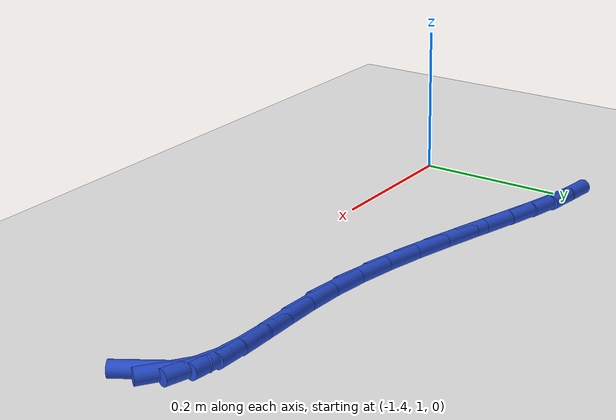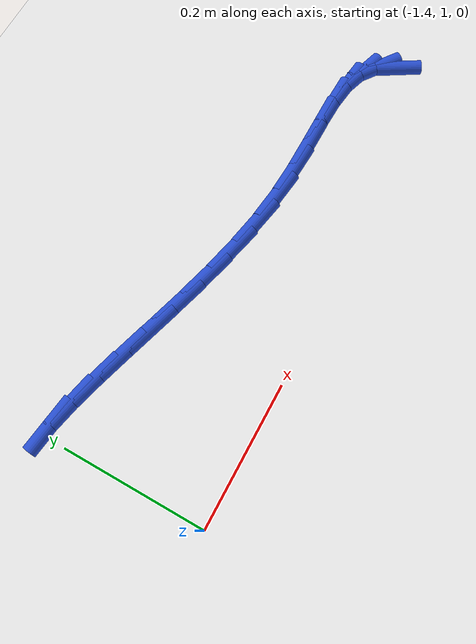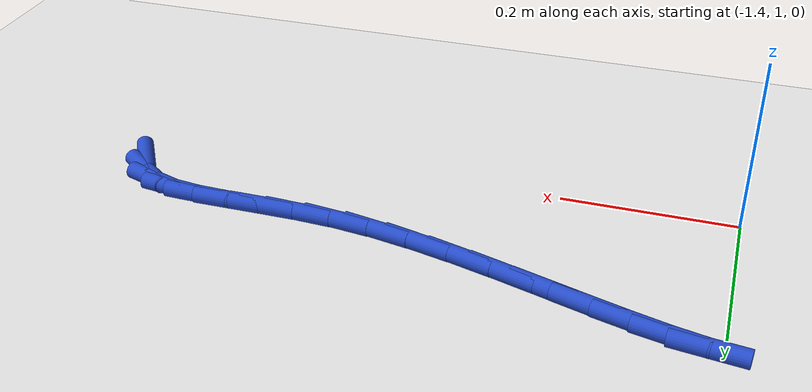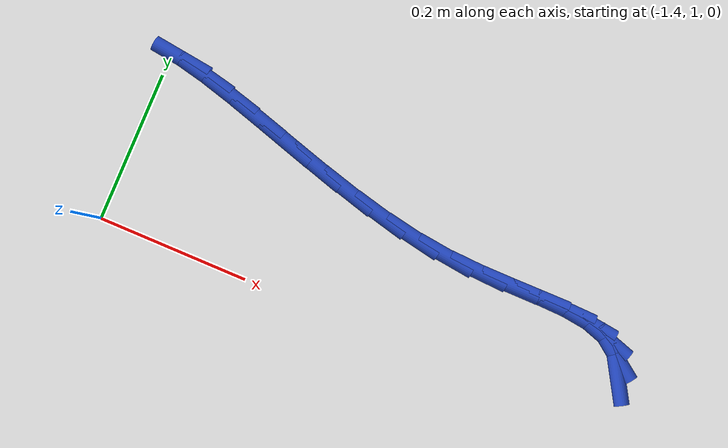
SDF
<sdf version="1.6">
 <world name="default">
  <model name="ground_plane">
   <static>1</static>
   <link name="link">
    <collision name="collision">
     <geometry><plane><normal>0 0 1</normal><size>100 100</size></plane></geometry>
     <surface><friction><ode><mu>100</mu><mu2>50</mu2></ode></friction></surface>
    </collision>
    <visual name="visual">
     <cast_shadows>0</cast_shadows>
     <geometry><plane><normal>0 0 1</normal><size>100 100</size></plane></geometry>
     <material>
      <script><uri>file://media/materials/scripts/gazebo.material</uri><name>Gazebo/WhiteGlow</name></script>
     </material>
    </visual>
   </link>
  </model>
  <model name="line">
   <link name="link_40">
    <pose>-0.7160329227617046 1.0746527065797729 0.01 0 1.57 -1.0314268278902456</pose>
    <collision name="collision">
     <geometry><cylinder><radius>0.01</radius><length>0.08</length></cylinder></geometry>
    </collision>
    <visual name="visual">
     <material>
      <script><name>Gazebo/Blue</name><uri>file://media/materials/scripts/gazebo.material</uri></script>
     </material>
     <geometry><cylinder><radius>0.01</radius><length>0.08</length></cylinder></geometry>
    </visual>
   </link>
   <link name="link_41">
    <pose>-0.7294820120841008 1.097121297116823 0.01 0 1.57 -0.6356567790762537</pose>
    <collision name="collision">
     <geometry><cylinder><radius>0.01</radius><length>0.08</length></cylinder></geometry>
    </collision>
    <visual name="visual">
     <material>
      <script><name>Gazebo/Blue</name><uri>file://media/materials/scripts/gazebo.material</uri></script>
     </material>
     <geometry><cylinder><radius>0.01</radius><length>0.08</length></cylinder></geometry>
    </visual>
   </link>
   <link name="link_42">
    <pose>-0.7496906750294795 1.112031545183198 0.01 0 1.57 -0.3145713084228156</pose>
    <collision name="collision">
     <geometry><cylinder><radius>0.01</radius><length>0.08</length></cylinder></geometry>
    </collision>
    <visual name="visual">
     <material>
      <script><name>Gazebo/Blue</name><uri>file://media/materials/scripts/gazebo.material</uri></script>
     </material>
     <geometry><cylinder><radius>0.01</radius><length>0.08</length></cylinder></geometry>
    </visual>
   </link>
   <link name="link_43">
    <pose>-0.7761793228513663 1.1206502969376975 0.01 0 1.57 -0.12443586693087837</pose>
    <collision name="collision">
     <geometry><cylinder><radius>0.01</radius><length>0.08</length></cylinder></geometry>
    </collision>
    <visual name="visual">
     <material>
      <script><name>Gazebo/Blue</name><uri>file://media/materials/scripts/gazebo.material</uri></script>
     </material>
     <geometry><cylinder><radius>0.01</radius><length>0.08</length></cylinder></geometry>
    </visual>
   </link>
   <link name="link_44">
    <pose>-0.8081791116526986 1.1246528988995768 0.01 0 1.57 -0.028890663913331574</pose>
    <collision name="collision">
     <geometry><cylinder><radius>0.01</radius><length>0.08</length></cylinder></geometry>
    </collision>
    <visual name="visual">
     <material>
      <script><name>Gazebo/Blue</name><uri>file://media/materials/scripts/gazebo.material</uri></script>
     </material>
     <geometry><cylinder><radius>0.01</radius><length>0.08</length></cylinder></geometry>
    </visual>
   </link>
   <link name="link_45">
    <pose>-0.844921197536414 1.1257146975880914 0.01 0 1.57 0.005001932229973916</pose>
    <collision name="collision">
     <geometry><cylinder><radius>0.01</radius><length>0.08</length></cylinder></geometry>
    </collision>
    <visual name="visual">
     <material>
      <script><name>Gazebo/Blue</name><uri>file://media/materials/scripts/gazebo.material</uri></script>
     </material>
     <geometry><cylinder><radius>0.01</radius><length>0.08</length></cylinder></geometry>
    </visual>
   </link>
   <link name="link_46">
    <pose>-0.8856367366054508 1.1255110395224959 0.01 0 1.57 -0.004695571202951977</pose>
    <collision name="collision">
     <geometry><cylinder><radius>0.01</radius><length>0.08</length></cylinder></geometry>
    </collision>
    <visual name="visual">
     <material>
      <script><name>Gazebo/Blue</name><uri>file://media/materials/scripts/gazebo.material</uri></script>
     </material>
     <geometry><cylinder><radius>0.01</radius><length>0.08</length></cylinder></geometry>
    </visual>
   </link>
   <link name="link_47">
    <pose>-0.9295568849627464 1.1257172712220462 0.01 0 1.57 -0.049391849032370545</pose>
    <collision name="collision">
     <geometry><cylinder><radius>0.01</radius><length>0.08</length></cylinder></geometry>
    </collision>
    <visual name="visual">
     <material>
      <script><name>Gazebo/Blue</name><uri>file://media/materials/scripts/gazebo.material</uri></script>
     </material>
     <geometry><cylinder><radius>0.01</radius><length>0.08</length></cylinder></geometry>
    </visual>
   </link>
   <link name="link_48">
    <pose>-0.9759127987112381 1.1280087392059976 0.01 0 1.57 -0.12126209495058496</pose>
    <collision name="collision">
     <geometry><cylinder><radius>0.01</radius><length>0.08</length></cylinder></geometry>
    </collision>
    <visual name="visual">
     <material>
      <script><name>Gazebo/Blue</name><uri>file://media/materials/scripts/gazebo.material</uri></script>
     </material>
     <geometry><cylinder><radius>0.01</radius><length>0.08</length></cylinder></geometry>
    </visual>
   </link>
   <link name="link_49">
    <pose>-1.023941636699651 1.1338615323373513 0.01 0 1.57 -0.18732919693956782</pose>
    <collision name="collision">
     <geometry><cylinder><radius>0.01</radius><length>0.08</length></cylinder></geometry>
    </collision>
    <visual name="visual">
     <material>
      <script><name>Gazebo/Blue</name><uri>file://media/materials/scripts/gazebo.material</uri></script>
     </material>
     <geometry><cylinder><radius>0.01</radius><length>0.08</length></cylinder></geometry>
    </visual>
   </link>
   <link name="link_50">
    <pose>-1.0729288969393787 1.143147149079656 0.01 0 1.57 -0.2354410953516581</pose>
    <collision name="collision">
     <geometry><cylinder><radius>0.01</radius><length>0.08</length></cylinder></geometry>
    </collision>
    <visual name="visual">
     <material>
      <script><name>Gazebo/Blue</name><uri>file://media/materials/scripts/gazebo.material</uri></script>
     </material>
     <geometry><cylinder><radius>0.01</radius><length>0.08</length></cylinder></geometry>
    </visual>
   </link>
   <link name="link_51">
    <pose>-1.1221834027139739 1.1549628190489651 0.01 0 1.57 -0.26854711815059085</pose>
    <collision name="collision">
     <geometry><cylinder><radius>0.01</radius><length>0.08</length></cylinder></geometry>
    </collision>
    <visual name="visual">
     <material>
      <script><name>Gazebo/Blue</name><uri>file://media/materials/scripts/gazebo.material</uri></script>
     </material>
     <geometry><cylinder><radius>0.01</radius><length>0.08</length></cylinder></geometry>
    </visual>
   </link>
   <link name="link_52">
    <pose>-1.171014127964998 1.1684007708563413 0.01 0 1.57 -0.28833309087477643</pose>
    <collision name="collision">
     <geometry><cylinder><radius>0.01</radius><length>0.08</length></cylinder></geometry>
    </collision>
    <visual name="visual">
     <material>
      <script><name>Gazebo/Blue</name><uri>file://media/materials/scripts/gazebo.material</uri></script>
     </material>
     <geometry><cylinder><radius>0.01</radius><length>0.08</length></cylinder></geometry>
    </visual>
   </link>
   <link name="link_53">
    <pose>-1.2187300466340123 1.1825532331128457 0.01 0 1.57 -0.29517301512145183</pose>
    <collision name="collision">
     <geometry><cylinder><radius>0.01</radius><length>0.08</length></cylinder></geometry>
    </collision>
    <visual name="visual">
     <material>
      <script><name>Gazebo/Blue</name><uri>file://media/materials/scripts/gazebo.material</uri></script>
     </material>
     <geometry><cylinder><radius>0.01</radius><length>0.08</length></cylinder></geometry>
    </visual>
   </link>
   <link name="link_54">
    <pose>-1.2646401326625778 1.1965124344295408 0.01 0 1.57 -0.2879493658140747</pose>
    <collision name="collision">
     <geometry><cylinder><radius>0.01</radius><length>0.08</length></cylinder></geometry>
    </collision>
    <visual name="visual">
     <material>
      <script><name>Gazebo/Blue</name><uri>file://media/materials/scripts/gazebo.material</uri></script>
     </material>
     <geometry><cylinder><radius>0.01</radius><length>0.08</length></cylinder></geometry>
    </visual>
   </link>
   <link name="link_55">
    <pose>-1.3080533599922552 1.2093706034174876 0.01 0 1.57 -0.2634458789194492</pose>
    <collision name="collision">
     <geometry><cylinder><radius>0.01</radius><length>0.08</length></cylinder></geometry>
    </collision>
    <visual name="visual">
     <material>
      <script><name>Gazebo/Blue</name><uri>file://media/materials/scripts/gazebo.material</uri></script>
     </material>
     <geometry><cylinder><radius>0.01</radius><length>0.08</length></cylinder></geometry>
    </visual>
   </link>
   <link name="link_56">
    <pose>-1.3482787025646068 1.220219968687749 0.01 0 1.57 -0.214885247895679</pose>
    <collision name="collision">
     <geometry><cylinder><radius>0.01</radius><length>0.08</length></cylinder></geometry>
    </collision>
    <visual name="visual">
     <material>
      <script><name>Gazebo/Blue</name><uri>file://media/materials/scripts/gazebo.material</uri></script>
     </material>
     <geometry><cylinder><radius>0.01</radius><length>0.08</length></cylinder></geometry>
    </visual>
   </link>
   <link name="link_57">
    <pose>-1.384625134321193 1.2281527588513863 0.01 0 1.57 -0.1285786174697683</pose>
    <collision name="collision">
     <geometry><cylinder><radius>0.01</radius><length>0.08</length></cylinder></geometry>
    </collision>
    <visual name="visual">
     <material>
      <script><name>Gazebo/Blue</name><uri>file://media/materials/scripts/gazebo.material</uri></script>
     </material>
     <geometry><cylinder><radius>0.01</radius><length>0.08</length></cylinder></geometry>
    </visual>
   </link>
  </model>
 </world>
</sdf>
